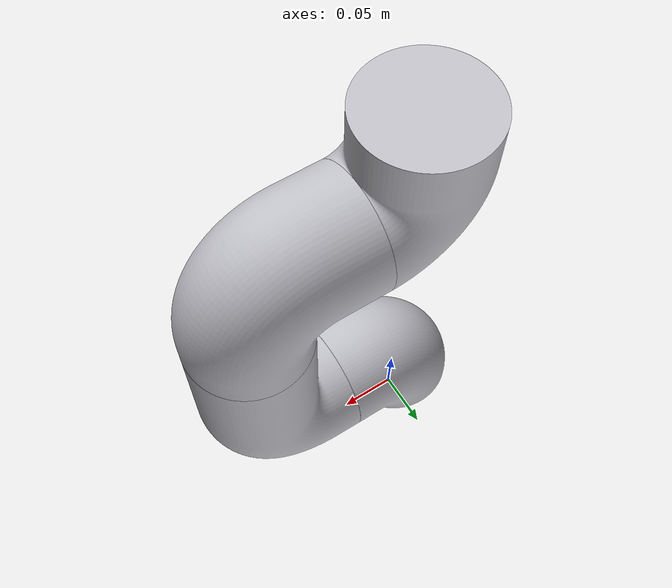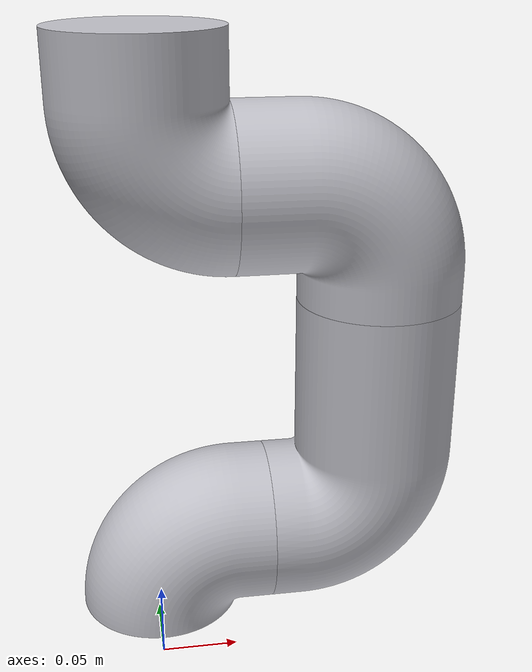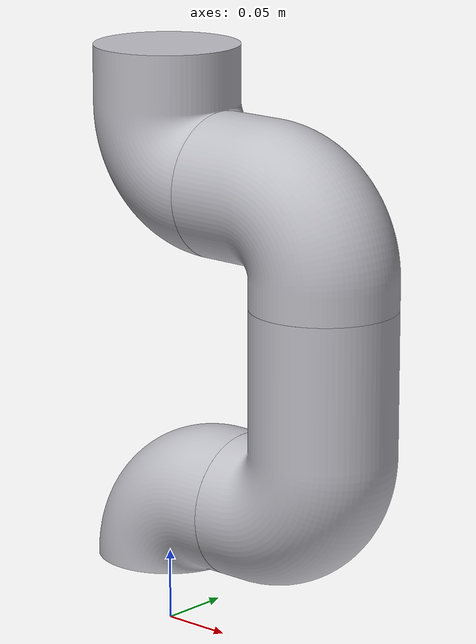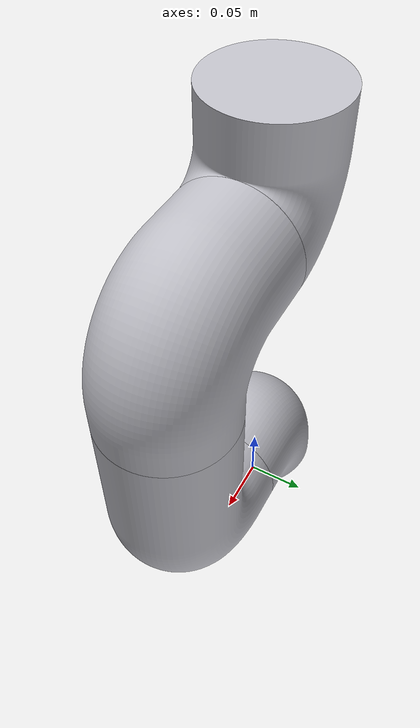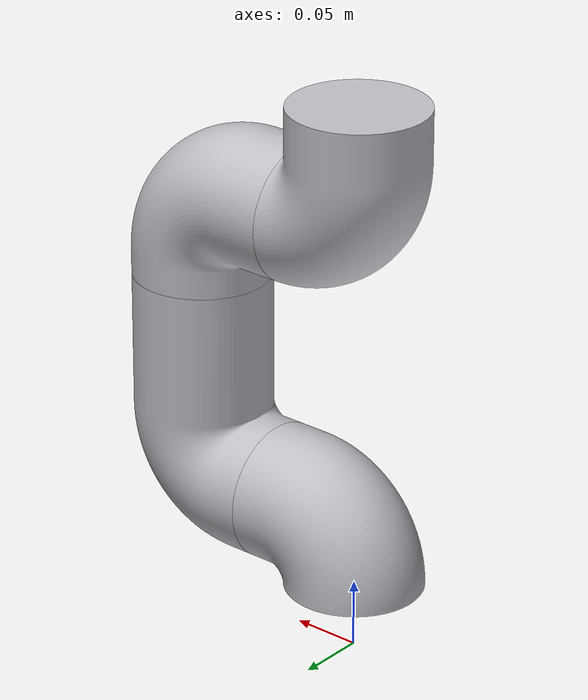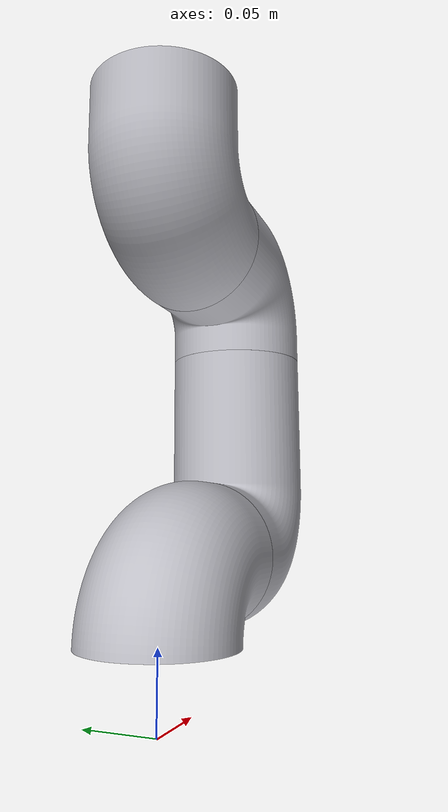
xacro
<?xml version="1.0" ?>
<robot name="ArmBot" xmlns:xacro="http://www.ros.org/wiki/xacro">

<xacro:include filename="$(find ArmBot_description)/urdf/materials.xacro" />
<xacro:include filename="$(find ArmBot_description)/urdf/ArmBot.trans" />
<xacro:include filename="$(find ArmBot_description)/urdf/ArmBot.gazebo" />
<link name="base_link">
  <inertial>
    <origin xyz="-1.1580046200244058e-17 5.790023100122029e-18 0.024999999999999994" rpy="0 0 0"/>
    <mass value="3.082687791334984"/>
    <inertia ixx="0.002569" iyy="0.002569" izz="0.003853" ixy="-0.0" iyz="-0.0" ixz="-0.0"/>
  </inertial>
  <visual>
    <origin xyz="0 0 0" rpy="0 0 0"/>
    <geometry>
      <mesh filename="package://ArmBot_description/meshes/base_link.stl" scale="0.001 0.001 0.001"/>
    </geometry>
    <material name="silver"/>
  </visual>
  <collision>
    <origin xyz="0 0 0" rpy="0 0 0"/>
    <geometry>
      <mesh filename="package://ArmBot_description/meshes/base_link.stl" scale="0.001 0.001 0.001"/>
    </geometry>
  </collision>
</link>

<link name="limb1_1">
  <inertial>
    <origin xyz="0.02031656736688872 1.1751641752932095e-17 0.04186125114925961" rpy="0 0 0"/>
    <mass value="6.07534977581846"/>
    <inertia ixx="0.007597" iyy="0.009203" izz="0.009201" ixy="0.0" iyz="0.0" ixz="-0.001422"/>
  </inertial>
  <visual>
    <origin xyz="-0.0 -0.0 -0.05" rpy="0 0 0"/>
    <geometry>
      <mesh filename="package://ArmBot_description/meshes/limb1_1.stl" scale="0.001 0.001 0.001"/>
    </geometry>
    <material name="silver"/>
  </visual>
  <collision>
    <origin xyz="-0.0 -0.0 -0.05" rpy="0 0 0"/>
    <geometry>
      <mesh filename="package://ArmBot_description/meshes/limb1_1.stl" scale="0.001 0.001 0.001"/>
    </geometry>
  </collision>
</link>

<link name="limb2_1">
  <inertial>
    <origin xyz="0.059916426569260856 1.1665212967083719e-17 0.05440717643509205" rpy="0 0 0"/>
    <mass value="12.24072535848843"/>
    <inertia ixx="0.04241" iyy="0.04528" izz="0.018171" ixy="0.0" iyz="-0.0" ixz="-0.007133"/>
  </inertial>
  <visual>
    <origin xyz="-0.07 0.0 -0.1" rpy="0 0 0"/>
    <geometry>
      <mesh filename="package://ArmBot_description/meshes/limb2_1.stl" scale="0.001 0.001 0.001"/>
    </geometry>
    <material name="silver"/>
  </visual>
  <collision>
    <origin xyz="-0.07 0.0 -0.1" rpy="0 0 0"/>
    <geometry>
      <mesh filename="package://ArmBot_description/meshes/limb2_1.stl" scale="0.001 0.001 0.001"/>
    </geometry>
  </collision>
</link>

<link name="limb3_1">
  <inertial>
    <origin xyz="-0.025999679457882466 2.5075923672035212e-17 0.05554934696839986" rpy="0 0 0"/>
    <mass value="8.541500008886445"/>
    <inertia ixx="0.013008" iyy="0.01851" izz="0.01618" ixy="0.0" iyz="0.0" ixz="0.003627"/>
  </inertial>
  <visual>
    <origin xyz="-0.14 -0.0 -0.25" rpy="0 0 0"/>
    <geometry>
      <mesh filename="package://ArmBot_description/meshes/limb3_1.stl" scale="0.001 0.001 0.001"/>
    </geometry>
    <material name="silver"/>
  </visual>
  <collision>
    <origin xyz="-0.14 -0.0 -0.25" rpy="0 0 0"/>
    <geometry>
      <mesh filename="package://ArmBot_description/meshes/limb3_1.stl" scale="0.001 0.001 0.001"/>
    </geometry>
  </collision>
</link>

<link name="limb4_1">
  <inertial>
    <origin xyz="-0.043234418259189084 -4.8844542525081596e-17 0.030386337082416726" rpy="0 0 0"/>
    <mass value="7.308424892352453"/>
    <inertia ixx="0.013664" iyy="0.013734" izz="0.009206" ixy="-0.0" iyz="0.0" ixz="0.00192"/>
  </inertial>
  <visual>
    <origin xyz="-0.05 -0.0 -0.32" rpy="0 0 0"/>
    <geometry>
      <mesh filename="package://ArmBot_description/meshes/limb4_1.stl" scale="0.001 0.001 0.001"/>
    </geometry>
    <material name="silver"/>
  </visual>
  <collision>
    <origin xyz="-0.05 -0.0 -0.32" rpy="0 0 0"/>
    <geometry>
      <mesh filename="package://ArmBot_description/meshes/limb4_1.stl" scale="0.001 0.001 0.001"/>
    </geometry>
  </collision>
</link>

<joint name="limb1_2_base_link" type="continuous">
  <origin xyz="0.0 0.0 0.05" rpy="0 0 0"/>
  <parent link="base_link"/>
  <child link="limb1_1"/>
  <axis xyz="0.0 0.0 1.0"/>
</joint>

<joint name="limb2_2_limb1" type="continuous">
  <origin xyz="0.07 -0.0 0.05" rpy="0 0 0"/>
  <parent link="limb1_1"/>
  <child link="limb2_1"/>
  <axis xyz="1.0 0.0 0.0"/>
</joint>

<joint name="limb3_2_limb2" type="continuous">
  <origin xyz="0.07 0.0 0.15" rpy="0 0 0"/>
  <parent link="limb2_1"/>
  <child link="limb3_1"/>
  <axis xyz="0.0 0.0 1.0"/>
</joint>

<joint name="limb4_2_limb3" type="continuous">
  <origin xyz="-0.09 0.0 0.07" rpy="0 0 0"/>
  <parent link="limb3_1"/>
  <child link="limb4_1"/>
  <axis xyz="-1.0 0.0 0.0"/>
</joint>

</robot>

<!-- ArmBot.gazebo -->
<robot name="ArmBot" xmlns:xacro="http://www.ros.org/wiki/xacro" >

<xacro:property name="body_color" value="Gazebo/Silver" />

<gazebo>
  <plugin name="control" filename="libgazebo_ros_control.so"/>
</gazebo>
<gazebo reference="base_link">
  <material>${body_color}</material>
  <mu1>0.2</mu1>
  <mu2>0.2</mu2>
  <selfCollide>true</selfCollide>
  <gravity>true</gravity>
</gazebo>

<gazebo reference="limb1_1">
  <material>${body_color}</material>
  <mu1>0.2</mu1>
  <mu2>0.2</mu2>
  <selfCollide>true</selfCollide>
</gazebo>

<gazebo reference="limb2_1">
  <material>${body_color}</material>
  <mu1>0.2</mu1>
  <mu2>0.2</mu2>
  <selfCollide>true</selfCollide>
</gazebo>

<gazebo reference="limb3_1">
  <material>${body_color}</material>
  <mu1>0.2</mu1>
  <mu2>0.2</mu2>
  <selfCollide>true</selfCollide>
</gazebo>

<gazebo reference="limb4_1">
  <material>${body_color}</material>
  <mu1>0.2</mu1>
  <mu2>0.2</mu2>
  <selfCollide>true</selfCollide>
</gazebo>

</robot>
